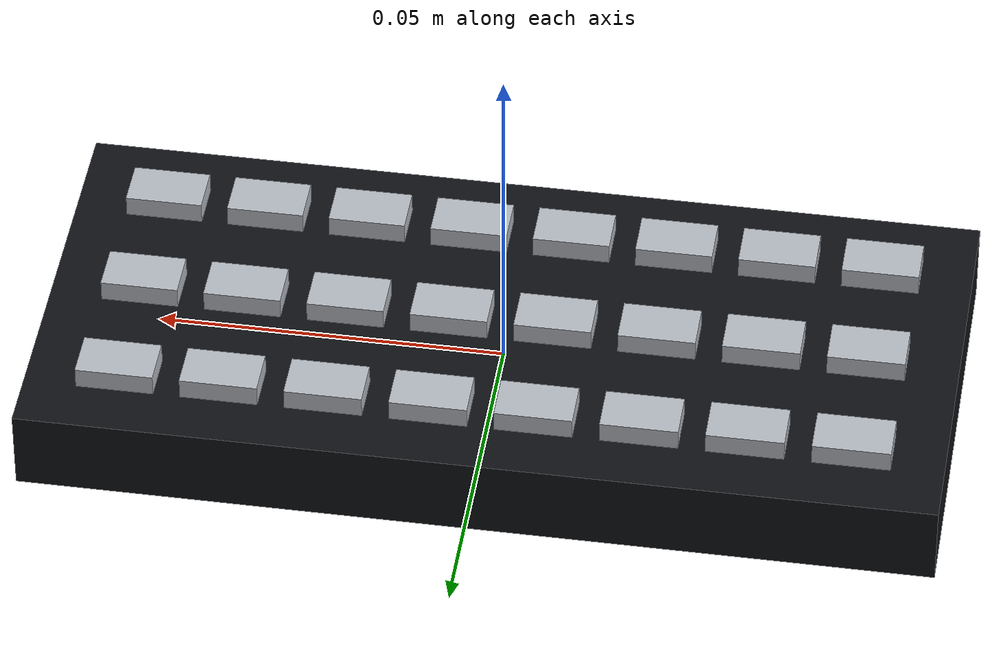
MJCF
<mujoco model="vla82_vla82_053__aux_04">
  <compiler angle="radian"/>
  <asset>
    <texture name="source_texture" type="2d" file="source_texture.png"/>
    <material name="source_material" texture="source_texture" rgba="1 1 1 1"/>
  </asset>
  <default>
    <default class="visual"><geom contype="0" conaffinity="0" group="1"/></default>
    <default class="collision"><geom contype="1" conaffinity="1" group="0" density="300" friction="0.55 0.005 0.0002" solref="0.02 1" solimp="0.9 0.95 0.001"/></default>
    <default class="region"><geom contype="0" conaffinity="0" group="1" rgba="0 1 0 0" mass="0"/></default>
  </default>
  <worldbody><body><body name="object">
    <geom name="keyboard_base" class="visual" type="box" size="0.065000 0.030000 0.006000" rgba="0.055 0.065 0.080 1"/>
    <geom name="keyboard_key_0_0" class="visual" type="box" pos="-0.052000 -0.018600 0.007500" size="0.005525 0.003450 0.0015" rgba="0.72 0.74 0.77 1"/>
    <geom name="keyboard_key_0_1" class="visual" type="box" pos="-0.037143 -0.018600 0.007500" size="0.005525 0.003450 0.0015" rgba="0.72 0.74 0.77 1"/>
    <geom name="keyboard_key_0_2" class="visual" type="box" pos="-0.022286 -0.018600 0.007500" size="0.005525 0.003450 0.0015" rgba="0.72 0.74 0.77 1"/>
    <geom name="keyboard_key_0_3" class="visual" type="box" pos="-0.007429 -0.018600 0.007500" size="0.005525 0.003450 0.0015" rgba="0.72 0.74 0.77 1"/>
    <geom name="keyboard_key_0_4" class="visual" type="box" pos="0.007429 -0.018600 0.007500" size="0.005525 0.003450 0.0015" rgba="0.72 0.74 0.77 1"/>
    <geom name="keyboard_key_0_5" class="visual" type="box" pos="0.022286 -0.018600 0.007500" size="0.005525 0.003450 0.0015" rgba="0.72 0.74 0.77 1"/>
    <geom name="keyboard_key_0_6" class="visual" type="box" pos="0.037143 -0.018600 0.007500" size="0.005525 0.003450 0.0015" rgba="0.72 0.74 0.77 1"/>
    <geom name="keyboard_key_0_7" class="visual" type="box" pos="0.052000 -0.018600 0.007500" size="0.005525 0.003450 0.0015" rgba="0.72 0.74 0.77 1"/>
    <geom name="keyboard_key_1_0" class="visual" type="box" pos="-0.052000 0.000000 0.007500" size="0.005525 0.003450 0.0015" rgba="0.72 0.74 0.77 1"/>
    <geom name="keyboard_key_1_1" class="visual" type="box" pos="-0.037143 0.000000 0.007500" size="0.005525 0.003450 0.0015" rgba="0.72 0.74 0.77 1"/>
    <geom name="keyboard_key_1_2" class="visual" type="box" pos="-0.022286 0.000000 0.007500" size="0.005525 0.003450 0.0015" rgba="0.72 0.74 0.77 1"/>
    <geom name="keyboard_key_1_3" class="visual" type="box" pos="-0.007429 0.000000 0.007500" size="0.005525 0.003450 0.0015" rgba="0.72 0.74 0.77 1"/>
    <geom name="keyboard_key_1_4" class="visual" type="box" pos="0.007429 0.000000 0.007500" size="0.005525 0.003450 0.0015" rgba="0.72 0.74 0.77 1"/>
    <geom name="keyboard_key_1_5" class="visual" type="box" pos="0.022286 0.000000 0.007500" size="0.005525 0.003450 0.0015" rgba="0.72 0.74 0.77 1"/>
    <geom name="keyboard_key_1_6" class="visual" type="box" pos="0.037143 0.000000 0.007500" size="0.005525 0.003450 0.0015" rgba="0.72 0.74 0.77 1"/>
    <geom name="keyboard_key_1_7" class="visual" type="box" pos="0.052000 0.000000 0.007500" size="0.005525 0.003450 0.0015" rgba="0.72 0.74 0.77 1"/>
    <geom name="keyboard_key_2_0" class="visual" type="box" pos="-0.052000 0.018600 0.007500" size="0.005525 0.003450 0.0015" rgba="0.72 0.74 0.77 1"/>
    <geom name="keyboard_key_2_1" class="visual" type="box" pos="-0.037143 0.018600 0.007500" size="0.005525 0.003450 0.0015" rgba="0.72 0.74 0.77 1"/>
    <geom name="keyboard_key_2_2" class="visual" type="box" pos="-0.022286 0.018600 0.007500" size="0.005525 0.003450 0.0015" rgba="0.72 0.74 0.77 1"/>
    <geom name="keyboard_key_2_3" class="visual" type="box" pos="-0.007429 0.018600 0.007500" size="0.005525 0.003450 0.0015" rgba="0.72 0.74 0.77 1"/>
    <geom name="keyboard_key_2_4" class="visual" type="box" pos="0.007429 0.018600 0.007500" size="0.005525 0.003450 0.0015" rgba="0.72 0.74 0.77 1"/>
    <geom name="keyboard_key_2_5" class="visual" type="box" pos="0.022286 0.018600 0.007500" size="0.005525 0.003450 0.0015" rgba="0.72 0.74 0.77 1"/>
    <geom name="keyboard_key_2_6" class="visual" type="box" pos="0.037143 0.018600 0.007500" size="0.005525 0.003450 0.0015" rgba="0.72 0.74 0.77 1"/>
    <geom name="keyboard_key_2_7" class="visual" type="box" pos="0.052000 0.018600 0.007500" size="0.005525 0.003450 0.0015" rgba="0.72 0.74 0.77 1"/>
    <geom name="collision" class="collision" type="box" size="0.065000 0.030000 0.006000"/>
    <geom name="reg_bbox" class="region" type="box" pos="0 0 0" size="0.065000 0.030000 0.009000"/>
  </body></body></worldbody>
  <actuator/>
</mujoco>
